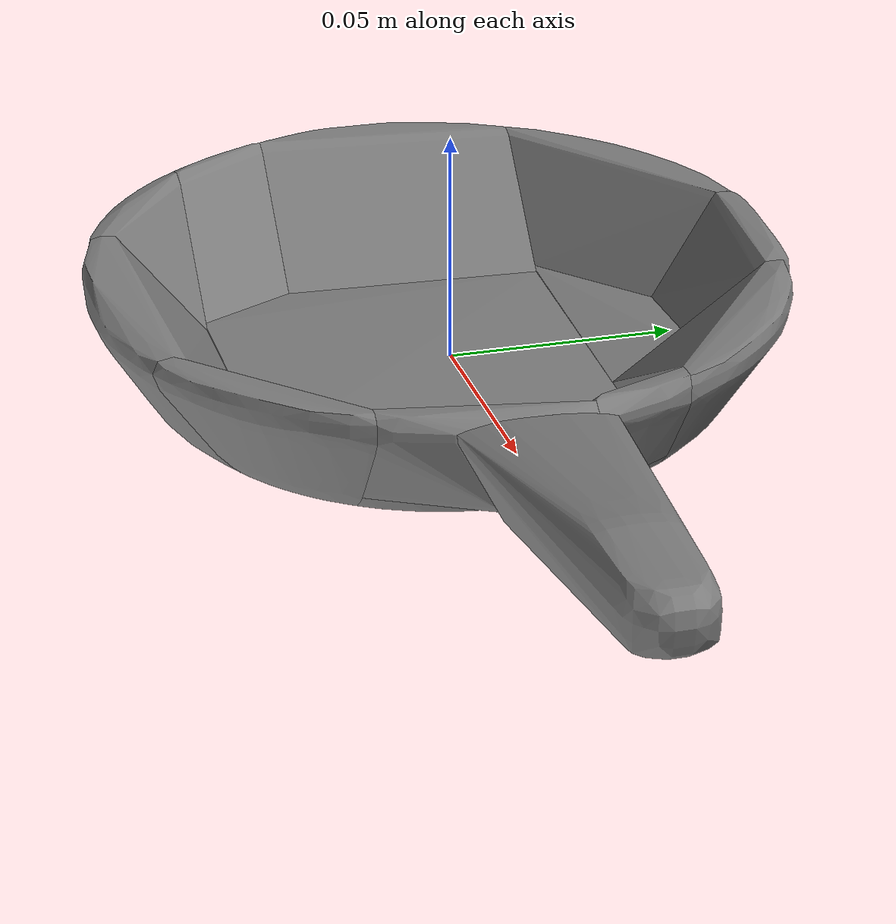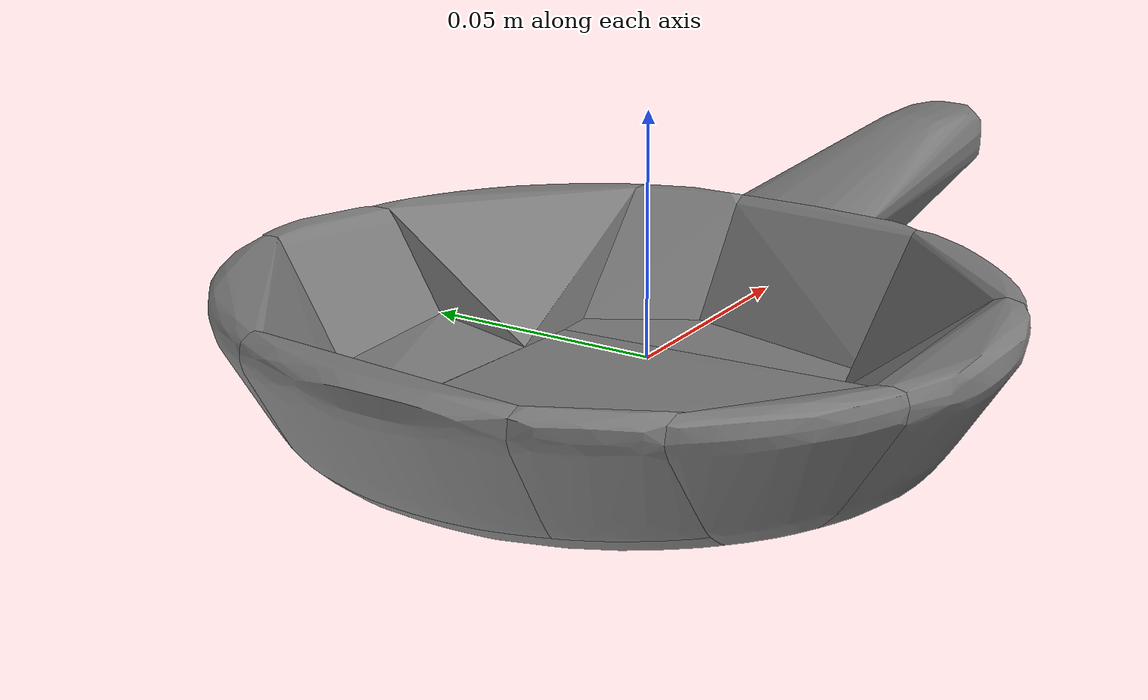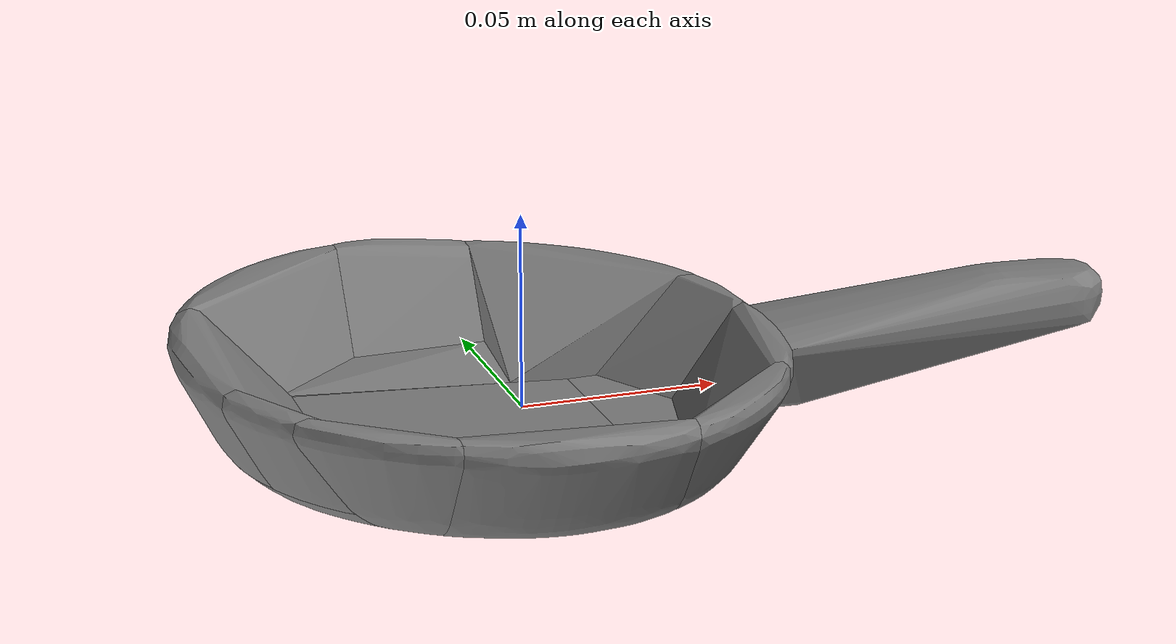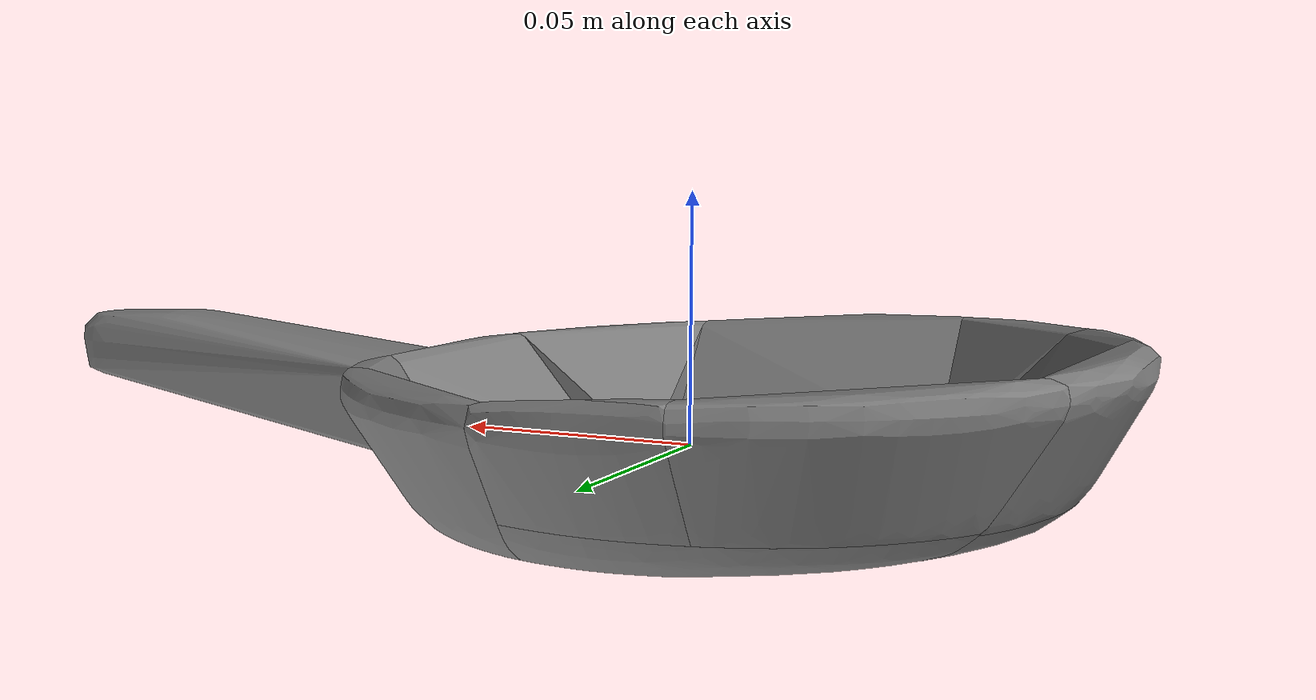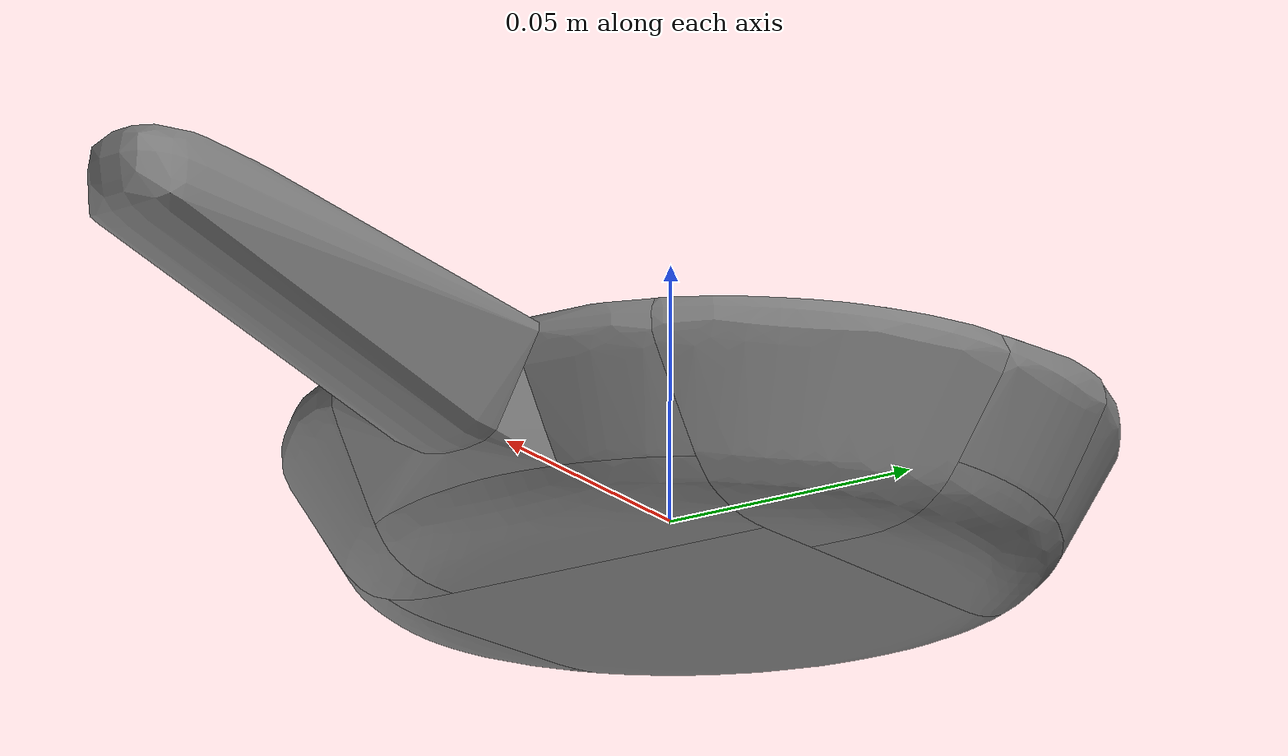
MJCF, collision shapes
<mujoco model="pan">
  <compiler meshdir="."/>

  <asset>
    <mesh name="pan" file="pan.stl"/>
    <mesh name="pan_collision_hull_000" file="pan_collision_hull_000.stl"/>
    <mesh name="pan_collision_hull_001" file="pan_collision_hull_001.stl"/>
    <mesh name="pan_collision_hull_002" file="pan_collision_hull_002.stl"/>
    <mesh name="pan_collision_hull_003" file="pan_collision_hull_003.stl"/>
    <mesh name="pan_collision_hull_004" file="pan_collision_hull_004.stl"/>
    <mesh name="pan_collision_hull_005" file="pan_collision_hull_005.stl"/>
    <mesh name="pan_collision_hull_006" file="pan_collision_hull_006.stl"/>
    <mesh name="pan_collision_hull_007" file="pan_collision_hull_007.stl"/>
    <mesh name="pan_collision_hull_008" file="pan_collision_hull_008.stl"/>
    <mesh name="pan_collision_hull_009" file="pan_collision_hull_009.stl"/>
    <mesh name="pan_collision_hull_010" file="pan_collision_hull_010.stl"/>
    <mesh name="pan_collision_hull_011" file="pan_collision_hull_011.stl"/>
    <mesh name="pan_collision_hull_012" file="pan_collision_hull_012.stl"/>
    <mesh name="pan_collision_hull_013" file="pan_collision_hull_013.stl"/>
  </asset>

  <worldbody>
    <body name="object">
      <freejoint name="object_joint"/>
      <geom name="object_visual" type="mesh" mesh="pan"
            contype="0" conaffinity="0" group="2" rgba="0.9 0.9 0.8 1" mass="0"/>
      <geom name="pan_collision_hull_000_collision" type="mesh" mesh="pan_collision_hull_000"
            mass="0.0036" condim="6" friction="1.0 0.002 0.002" priority="1"/>
      <geom name="pan_collision_hull_001_collision" type="mesh" mesh="pan_collision_hull_001"
            mass="0.0036" condim="6" friction="1.0 0.002 0.002" priority="1"/>
      <geom name="pan_collision_hull_002_collision" type="mesh" mesh="pan_collision_hull_002"
            mass="0.0036" condim="6" friction="1.0 0.002 0.002" priority="1"/>
      <geom name="pan_collision_hull_003_collision" type="mesh" mesh="pan_collision_hull_003"
            mass="0.0036" condim="6" friction="1.0 0.002 0.002" priority="1"/>
      <geom name="pan_collision_hull_004_collision" type="mesh" mesh="pan_collision_hull_004"
            mass="0.0036" condim="6" friction="1.0 0.002 0.002" priority="1"/>
      <geom name="pan_collision_hull_005_collision" type="mesh" mesh="pan_collision_hull_005"
            mass="0.0036" condim="6" friction="1.0 0.002 0.002" priority="1"/>
      <geom name="pan_collision_hull_006_collision" type="mesh" mesh="pan_collision_hull_006"
            mass="0.0036" condim="6" friction="1.0 0.002 0.002" priority="1"/>
      <geom name="pan_collision_hull_007_collision" type="mesh" mesh="pan_collision_hull_007"
            mass="0.0036" condim="6" friction="1.0 0.002 0.002" priority="1"/>
      <geom name="pan_collision_hull_008_collision" type="mesh" mesh="pan_collision_hull_008"
            mass="0.0036" condim="6" friction="1.0 0.002 0.002" priority="1"/>
      <geom name="pan_collision_hull_009_collision" type="mesh" mesh="pan_collision_hull_009"
            mass="0.0036" condim="6" friction="1.0 0.002 0.002" priority="1"/>
      <geom name="pan_collision_hull_010_collision" type="mesh" mesh="pan_collision_hull_010"
            mass="0.0036" condim="6" friction="1.0 0.002 0.002" priority="1"/>
      <geom name="pan_collision_hull_011_collision" type="mesh" mesh="pan_collision_hull_011"
            mass="0.0036" condim="6" friction="1.0 0.002 0.002" priority="1"/>
      <geom name="pan_collision_hull_012_collision" type="mesh" mesh="pan_collision_hull_012"
            mass="0.0036" condim="6" friction="1.0 0.002 0.002" priority="1"/>
      <geom name="pan_collision_hull_013_collision" type="mesh" mesh="pan_collision_hull_013"
            mass="0.0036" condim="6" friction="1.0 0.002 0.002" priority="1"/>
    </body>
  </worldbody>
</mujoco>
